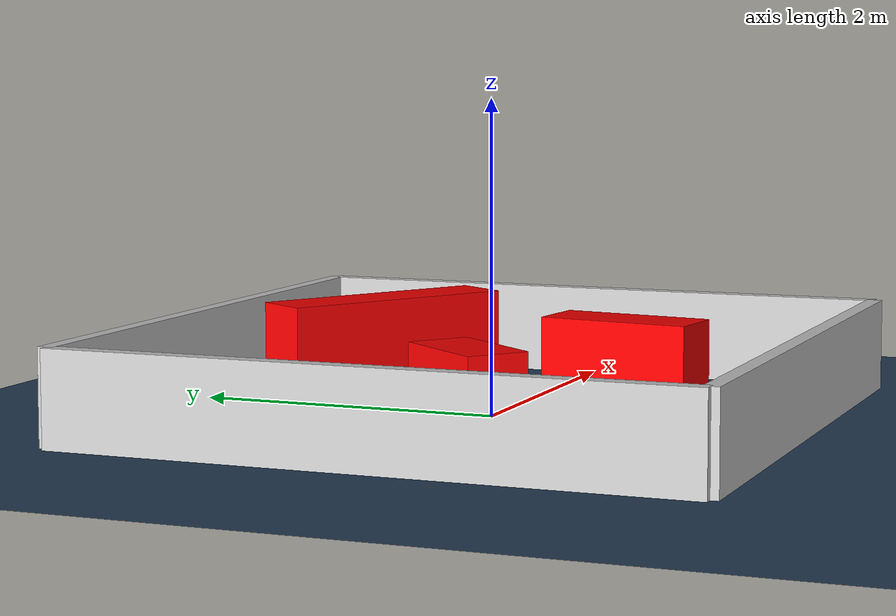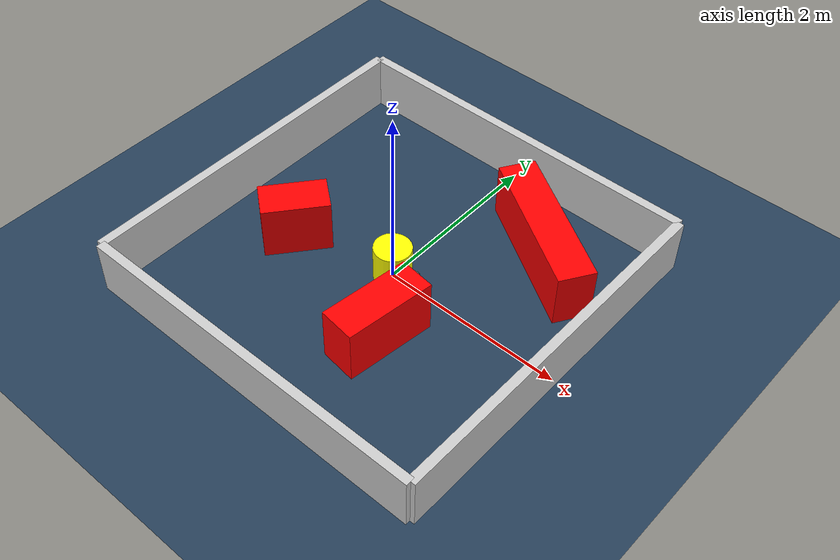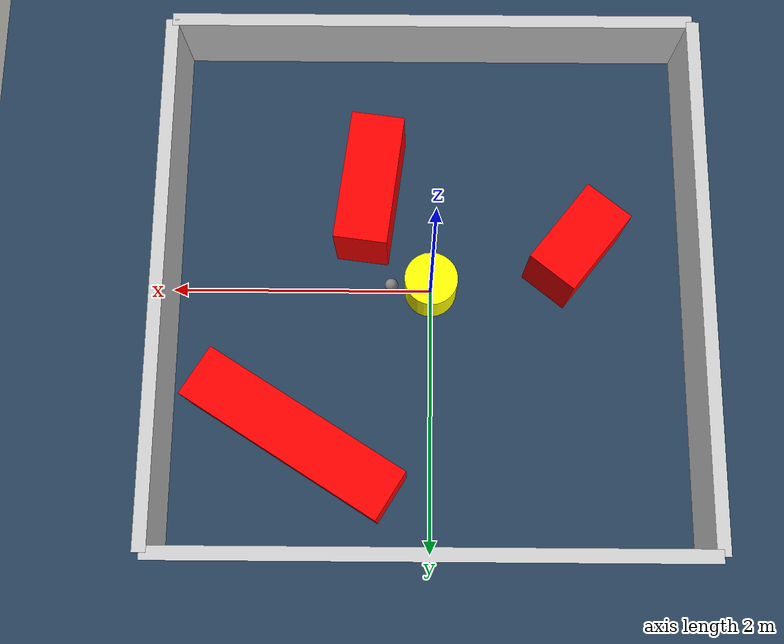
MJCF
<?xml version="1.0" ?>
<mujoco model="generated_environment">
  <option timestep="0.01" integrator="RK4" cone="elliptic"/>
  <default>
    <geom density="1"/>
  </default>
  <asset>
    <texture builtin="gradient" height="3072" rgb1="0.3 0.5 0.7" rgb2="0 0 0" type="skybox" width="512"/>
    <texture builtin="checker" height="300" mark="edge" markrgb="0.8 0.8 0.8" name="groundplane" rgb1="0.2 0.3 0.4" rgb2="0.1 0.2 0.3" type="2d" width="300"/>
    <material name="groundplane" reflectance="0.2" texrepeat="5 5" texture="groundplane" texuniform="true"/>
    <material name="robot" rgba="0.0 1.0 0.0 1"/>
  </asset>
  <worldbody>
    <light dir="0 0 -1" directional="true" pos="0 0 1.5"/>
    <geom condim="4" friction="1.0 0.005 0.001" material="groundplane" name="floor" size="0 0 0.05" type="plane"/>
    <body name="walls">
      <geom name="wall_1" condim="4" pos="-2.0 0.0 0.3" rgba="0.800000011920929 0.800000011920929 0.800000011920929 1.0" size="0.05 2.0 0.3" type="box"/>
      <geom name="wall_2" condim="4" pos="2.0 0.0 0.3" rgba="0.800000011920929 0.800000011920929 0.800000011920929 1.0" size="0.05 2.0 0.3" type="box"/>
      <geom name="wall_3" condim="4" pos="0.0 -2.0 0.3" rgba="0.800000011920929 0.800000011920929 0.800000011920929 1.0" size="2.0 0.05 0.3" type="box"/>
      <geom name="wall_4" condim="4" pos="0.0 2.0 0.3" rgba="0.800000011920929 0.800000011920929 0.800000011920929 1.0" size="2.0 0.05 0.3" type="box"/>
    </body>
    <body name="robot">
      <joint name="joint_x" type="slide" pos="0 0 0" axis="1 0 0"/>
      <joint name="joint_y" type="slide" pos="0 0 0" axis="0 1 0"/>
      <geom name="robot" type="sphere" pos="0.3 0.0 0.2" size="0.05" mass="5." friction="1.0 0.005 0.0001" condim="4" rgba="0.5 0.5 0.5 1.0"/>
      <site name="sensor_ball"/>
    </body>
    <body name="obstacle_movable_1">
      <geom name="obstacle_movable_1" condim="4" pos="0.0 0.0 0.2" euler="0 0 0.0" friction="1.0 0.005 0.001" rgba="1.0 1.0 0.0 1.0" size="0.2 0.2 0.0" type="cylinder" mass="0.1"/>
      <joint type="free"/>
    </body>
    <body name="obstacle_2_static">
      <geom name="obstacle_2_static" condim="4" pos="-1.0926113629515724 -0.27650939862240387 0.3" euler="0 0 51.491956465504074" friction="1.0 0.005 0.001" rgba="1 0 0 1" size="0.35479486956605294 0.2 0.3" type="box"/>
    </body>
    <body name="obstacle_3_static">
      <geom name="obstacle_3_static" condim="4" pos="0.9835138885615018 1.170890947053796 0.3" euler="0 0 328.0251464368714" friction="1.0 0.005 0.001" rgba="1 0 0 1" size="0.8277898018905219 0.2 0.3" type="box"/>
    </body>
    <body name="obstacle_4_static">
      <geom name="obstacle_4_static" condim="4" pos="0.4670865954229779 -0.7280497177376974 0.3" euler="0 0 82.75888228149151" friction="1.0 0.005 0.001" rgba="1 0 0 1" size="0.4941420749152874 0.2 0.3" type="box"/>
    </body>
  </worldbody>
  <actuator>
    <motor name="actuator_x" joint="joint_x" gear="1" ctrlrange="-1 1"/>
    <motor name="actuator_y" joint="joint_y" gear="1" ctrlrange="-1 1"/>
  </actuator>
</mujoco>
